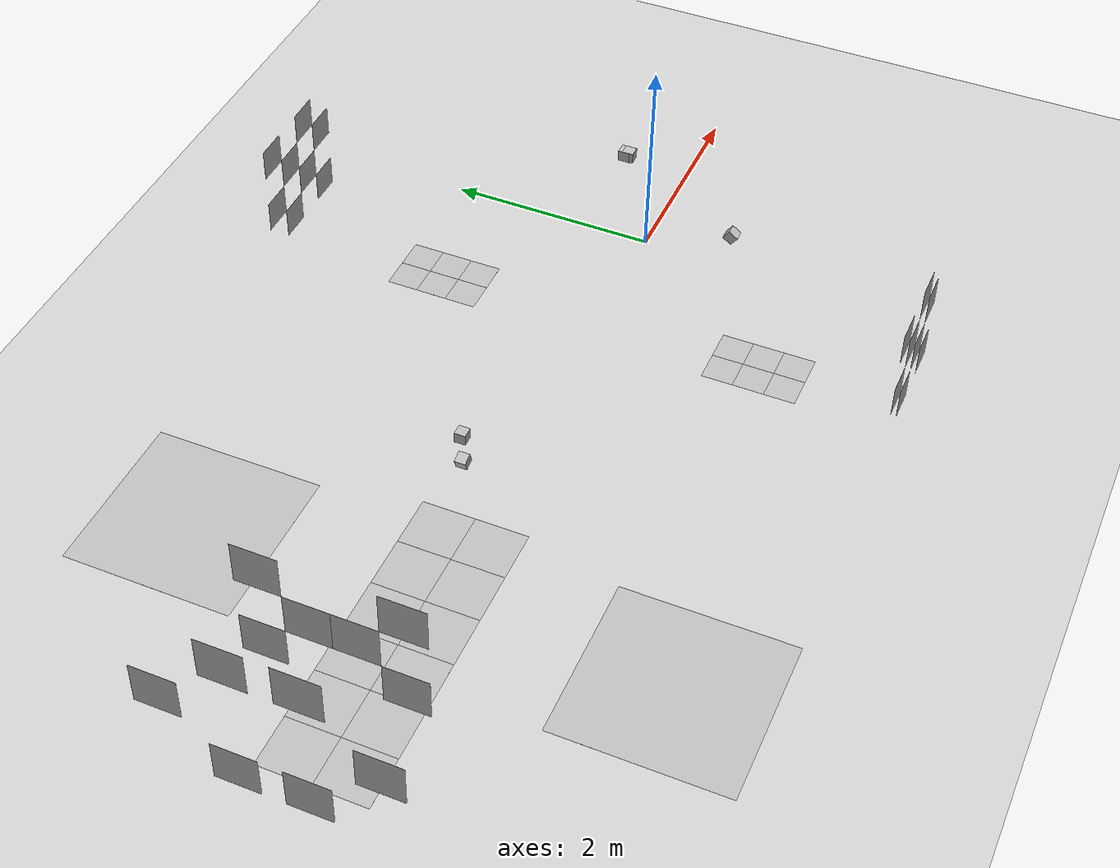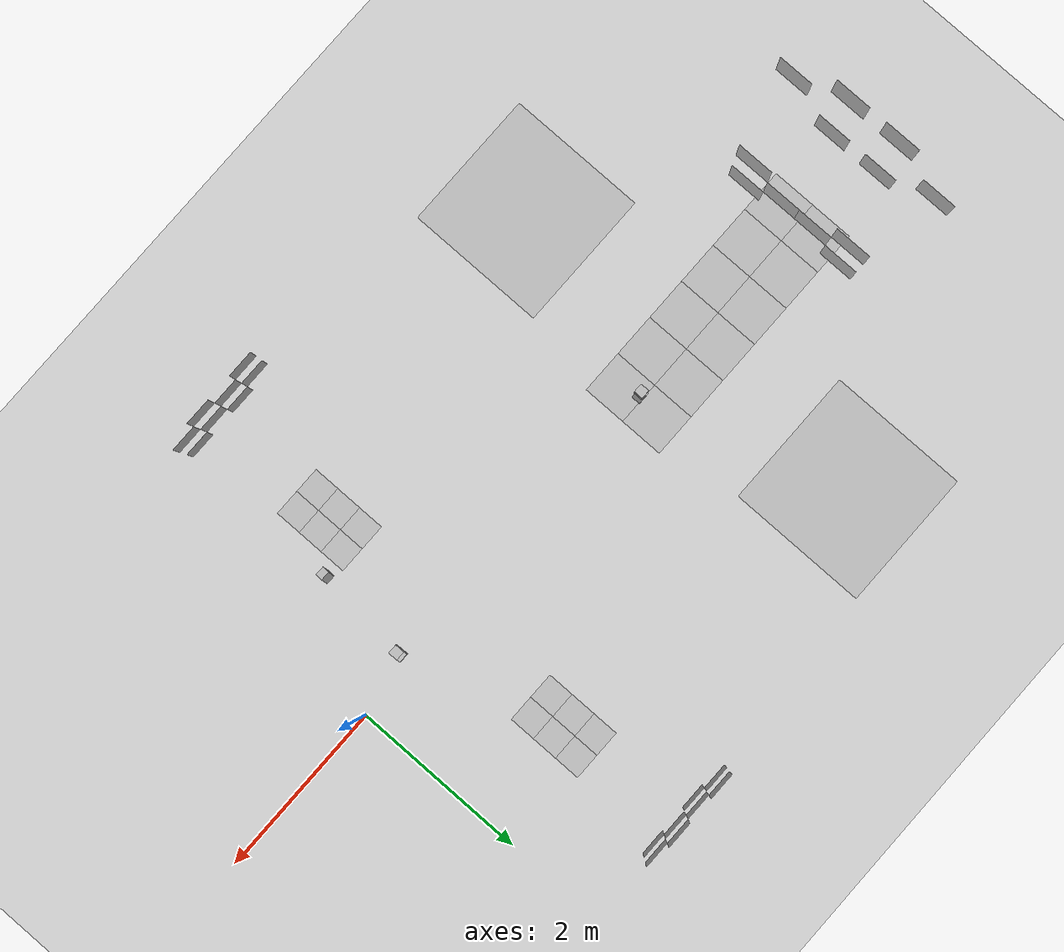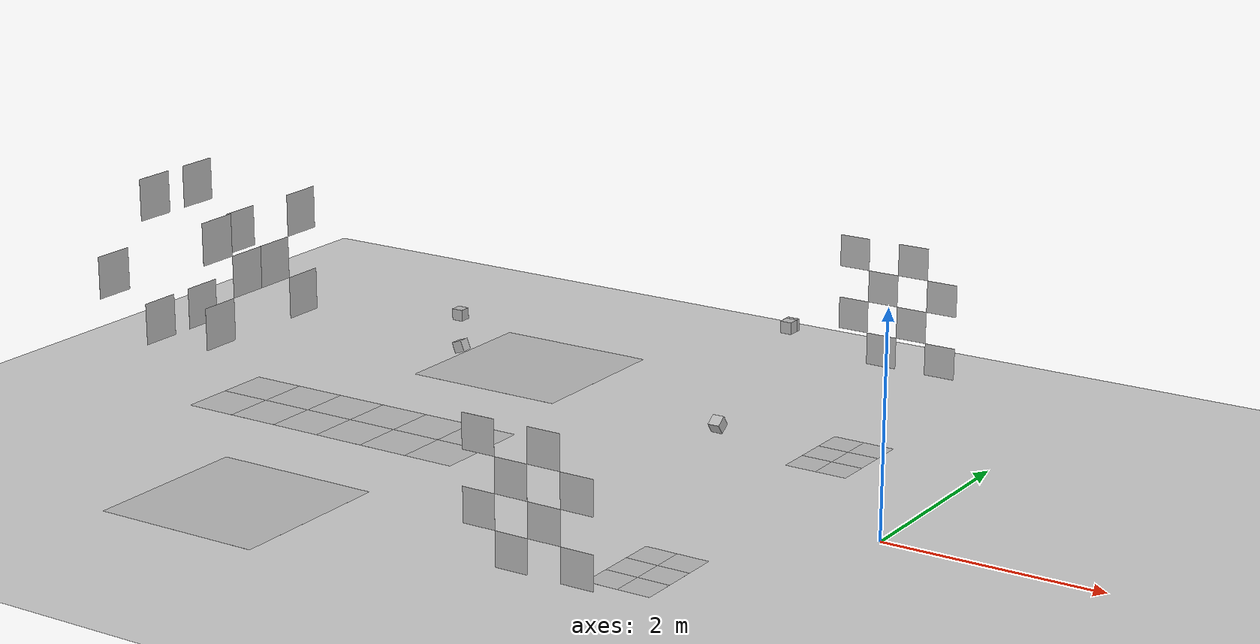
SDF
<sdf version="1.7">
 <world name="default">
  <model name="ground_plane">
   <pose>1.6 0 -0.001 0 -0 0</pose>
   <static>1</static>
   <link name="link">
    <collision name="collision">
     <geometry><plane><normal>0 0 1</normal><size>100 100</size></plane></geometry>
     <surface>
      <contact><collide_bitmask>65535</collide_bitmask></contact>
      <friction><ode><mu>100</mu><mu2>50</mu2></ode></friction>
     </surface>
    </collision>
    <visual name="visual">
     <cast_shadows>0</cast_shadows>
     <geometry><plane><normal>0 0 1</normal><size>100 100</size></plane></geometry>
     <material>
      <script><uri>file://media/materials/scripts/gazebo.material</uri><name>Gazebo/Grey</name></script>
     </material>
    </visual>
   </link>
  </model>
  <model name="Apriltag36_10_00115">
   <link name="main">
    <visual name="main_Visual">
     <geometry><box><size>0.5 0.5 0.0001</size></box></geometry>
     <material>
      <script>
       <uri>model://Apriltag36_10_00115/materials/scripts</uri>
       <uri>model://Apriltag36_10_00115/materials/textures</uri>
       <name>Apriltag36_10_00115</name>
      </script>
     </material>
    </visual>
    <collision name="collision"><geometry><box><size>0.5 0.5 0.0001</size></box></geometry></collision>
   </link>
   <static>1</static>
   <pose>-5.25 0.25 0 0 -0 0</pose>
  </model>
  <model name="Apriltag36_10_00114">
   <link name="main">
    <visual name="main_Visual">
     <geometry><box><size>0.5 0.5 0.0001</size></box></geometry>
     <material>
      <script>
       <uri>model://Apriltag36_10_00114/materials/scripts</uri>
       <uri>model://Apriltag36_10_00114/materials/textures</uri>
       <name>Apriltag36_10_00114</name>
      </script>
     </material>
    </visual>
    <collision name="collision"><geometry><box><size>0.5 0.5 0.0001</size></box></geometry></collision>
   </link>
   <static>1</static>
   <pose>-5.75 0.25 0 0 -0 0</pose>
  </model>
  <model name="Apriltag36_10_00113">
   <link name="main">
    <visual name="main_Visual">
     <geometry><box><size>0.5 0.5 0.0001</size></box></geometry>
     <material>
      <script>
       <uri>model://Apriltag36_10_00113/materials/scripts</uri>
       <uri>model://Apriltag36_10_00113/materials/textures</uri>
       <name>Apriltag36_10_00113</name>
      </script>
     </material>
    </visual>
    <collision name="collision"><geometry><box><size>0.5 0.5 0.0001</size></box></geometry></collision>
   </link>
   <static>1</static>
   <pose>-6.25 0.25 0 0 -0 0</pose>
  </model>
  <model name="Apriltag36_10_00112">
   <link name="main">
    <visual name="main_Visual">
     <geometry><box><size>0.5 0.5 0.0001</size></box></geometry>
     <material>
      <script>
       <uri>model://Apriltag36_10_00112/materials/scripts</uri>
       <uri>model://Apriltag36_10_00112/materials/textures</uri>
       <name>Apriltag36_10_00112</name>
      </script>
     </material>
    </visual>
    <collision name="collision"><geometry><box><size>0.5 0.5 0.0001</size></box></geometry></collision>
   </link>
   <static>1</static>
   <pose>-6.75 0.25 0 0 -0 0</pose>
  </model>
  <model name="Apriltag36_10_00119">
   <link name="main">
    <visual name="main_Visual">
     <geometry><box><size>0.5 0.5 0.0001</size></box></geometry>
     <material>
      <script>
       <uri>model://Apriltag36_10_00119/materials/scripts</uri>
       <uri>model://Apriltag36_10_00119/materials/textures</uri>
       <name>Apriltag36_10_00119</name>
      </script>
     </material>
    </visual>
    <collision name="collision"><geometry><box><size>0.5 0.5 0.0001</size></box></geometry></collision>
   </link>
   <static>1</static>
   <pose>-5.25 -0.25 0 0 -0 0</pose>
  </model>
  <model name="Apriltag36_10_00118">
   <link name="main">
    <visual name="main_Visual">
     <geometry><box><size>0.5 0.5 0.0001</size></box></geometry>
     <material>
      <script>
       <uri>model://Apriltag36_10_00118/materials/scripts</uri>
       <uri>model://Apriltag36_10_00118/materials/textures</uri>
       <name>Apriltag36_10_00118</name>
      </script>
     </material>
    </visual>
    <collision name="collision"><geometry><box><size>0.5 0.5 0.0001</size></box></geometry></collision>
   </link>
   <static>1</static>
   <pose>-5.75 -0.25 0 0 -0 0</pose>
  </model>
  <model name="Apriltag36_10_00117">
   <link name="main">
    <visual name="main_Visual">
     <geometry><box><size>0.5 0.5 0.0001</size></box></geometry>
     <material>
      <script>
       <uri>model://Apriltag36_10_00117/materials/scripts</uri>
       <uri>model://Apriltag36_10_00117/materials/textures</uri>
       <name>Apriltag36_10_00117</name>
      </script>
     </material>
    </visual>
    <collision name="collision"><geometry><box><size>0.5 0.5 0.0001</size></box></geometry></collision>
   </link>
   <static>1</static>
   <pose>-6.25 -0.25 0 0 -0 0</pose>
  </model>
  <model name="Apriltag36_10_00116">
   <link name="main">
    <visual name="main_Visual">
     <geometry><box><size>0.5 0.5 0.0001</size></box></geometry>
     <material>
      <script>
       <uri>model://Apriltag36_10_00116/materials/scripts</uri>
       <uri>model://Apriltag36_10_00116/materials/textures</uri>
       <name>Apriltag36_10_00116</name>
      </script>
     </material>
    </visual>
    <collision name="collision"><geometry><box><size>0.5 0.5 0.0001</size></box></geometry></collision>
   </link>
   <static>1</static>
   <pose>-6.75 -0.25 0 0 -0 0</pose>
  </model>
  <model name="Apriltag36_11_00423">
   <link name="main">
    <pose>0 0 0 3.14159 -1.5707 -0</pose>
    <visual name="main_Visual">
     <geometry><box><size>0.4 0.4 0.0001</size></box></geometry>
     <material>
      <script>
       <uri>model://Apriltag36_11_00423/materials/scripts</uri>
       <uri>model://Apriltag36_11_00423/materials/textures</uri>
       <name>Apriltag36_11_00423</name>
      </script>
     </material>
    </visual>
    <collision name="collision"><geometry><box><size>0.5 0.5 0.0001</size></box></geometry></collision>
   </link>
   <static>1</static>
   <pose>-6.5 0.2 1.3 0 -0 0</pose>
  </model>
  <model name="Apriltag36_11_00422">
   <link name="main">
    <pose>0 0 0 3.14159 -1.5707 -0</pose>
    <visual name="main_Visual">
     <geometry><box><size>0.4 0.4 0.0001</size></box></geometry>
     <material>
      <script>
       <uri>model://Apriltag36_11_00422/materials/scripts</uri>
       <uri>model://Apriltag36_11_00422/materials/textures</uri>
       <name>Apriltag36_11_00422</name>
      </script>
     </material>
    </visual>
    <collision name="collision"><geometry><box><size>0.5 0.5 0.0001</size></box></geometry></collision>
   </link>
   <static>1</static>
   <pose>-6.5 -0.2 1.3 0 -0 0</pose>
  </model>
  <model name="Apriltag36_11_00371">
   <link name="main">
    <pose>0 0 0 1.5707 -1.5707 0</pose>
    <visual name="main_Visual">
     <geometry><box><size>0.3 0.3 0.0001</size></box></geometry>
     <material>
      <script>
       <uri>model://Apriltag36_11_00371/materials/scripts</uri>
       <uri>model://Apriltag36_11_00371/materials/textures</uri>
       <name>Apriltag36_11_00371</name>
      </script>
     </material>
    </visual>
    <collision name="collision"><geometry><box><size>0.5 0.5 0.0001</size></box></geometry></collision>
   </link>
   <static>1</static>
   <pose>-1 3 1.15 0 -0 0</pose>
  </model>
  <model name="Apriltag36_11_00370">
   <link name="main">
    <pose>0 0 0 1.5707 -1.5707 0</pose>
    <visual name="main_Visual">
     <geometry><box><size>0.3 0.3 0.0001</size></box></geometry>
     <material>
      <script>
       <uri>model://Apriltag36_11_00370/materials/scripts</uri>
       <uri>model://Apriltag36_11_00370/materials/textures</uri>
       <name>Apriltag36_11_00370</name>
      </script>
     </material>
    </visual>
    <collision name="collision"><geometry><box><size>0.5 0.5 0.0001</size></box></geometry></collision>
   </link>
   <static>1</static>
   <pose>-1.6 3 1.15 0 -0 0</pose>
  </model>
  <model name="Apriltag36_11_00367">
   <link name="main">
    <pose>0 0 0 1.5707 -1.5707 0</pose>
    <visual name="main_Visual">
     <geometry><box><size>0.3 0.3 0.0001</size></box></geometry>
     <material>
      <script>
       <uri>model://Apriltag36_11_00367/materials/scripts</uri>
       <uri>model://Apriltag36_11_00367/materials/textures</uri>
       <name>Apriltag36_11_00367</name>
      </script>
     </material>
    </visual>
    <collision name="collision"><geometry><box><size>0.5 0.5 0.0001</size></box></geometry></collision>
   </link>
   <static>1</static>
   <pose>-1 3 0.55 0 -0 0</pose>
  </model>
  <model name="Apriltag36_11_00369">
   <link name="main">
    <pose>0 0 0 1.5707 -1.5707 0</pose>
    <visual name="main_Visual">
     <geometry><box><size>0.3 0.3 0.0001</size></box></geometry>
     <material>
      <script>
       <uri>model://Apriltag36_11_00369/materials/scripts</uri>
       <uri>model://Apriltag36_11_00369/materials/textures</uri>
       <name>Apriltag36_11_00369</name>
      </script>
     </material>
    </visual>
    <collision name="collision"><geometry><box><size>0.5 0.5 0.0001</size></box></geometry></collision>
   </link>
   <static>1</static>
   <pose>-1.3 3 0.85 0 -0 0</pose>
  </model>
  <model name="Apriltag36_11_00366">
   <link name="main">
    <pose>0 0 0 1.5707 -1.5707 0</pose>
    <visual name="main_Visual">
     <geometry><box><size>0.3 0.3 0.0001</size></box></geometry>
     <material>
      <script>
       <uri>model://Apriltag36_11_00366/materials/scripts</uri>
       <uri>model://Apriltag36_11_00366/materials/textures</uri>
       <name>Apriltag36_11_00366</name>
      </script>
     </material>
    </visual>
    <collision name="collision"><geometry><box><size>0.5 0.5 0.0001</size></box></geometry></collision>
   </link>
   <static>1</static>
   <pose>-1.6 3 0.55 0 -0 0</pose>
  </model>
  <model name="Apriltag36_11_00396">
   <link name="main">
    <pose>0 0 0 -1.5707 -1.5707 -0</pose>
    <visual name="main_Visual">
     <geometry><box><size>0.3 0.3 0.0001</size></box></geometry>
     <material>
      <script>
       <uri>model://Apriltag36_11_00396/materials/scripts</uri>
       <uri>model://Apriltag36_11_00396/materials/textures</uri>
       <name>Apriltag36_11_00396</name>
      </script>
     </material>
    </visual>
    <collision name="collision"><geometry><box><size>0.5 0.5 0.0001</size></box></geometry></collision>
   </link>
   <static>1</static>
   <pose>-1.3 -3 1.45 0 -0 0</pose>
  </model>
  <model name="Apriltag36_11_00395">
   <link name="main">
    <pose>0 0 0 -1.5707 -1.5707 -0</pose>
    <visual name="main_Visual">
     <geometry><box><size>0.3 0.3 0.0001</size></box></geometry>
     <material>
      <script>
       <uri>model://Apriltag36_11_00395/materials/scripts</uri>
       <uri>model://Apriltag36_11_00395/materials/textures</uri>
       <name>Apriltag36_11_00395</name>
      </script>
     </material>
    </visual>
    <collision name="collision"><geometry><box><size>0.5 0.5 0.0001</size></box></geometry></collision>
   </link>
   <static>1</static>
   <pose>-1.6 -3 1.15 0 -0 0</pose>
  </model>
  <model name="Apriltag36_11_00391">
   <link name="main">
    <pose>0 0 0 -1.5707 -1.5707 -0</pose>
    <visual name="main_Visual">
     <geometry><box><size>0.3 0.3 0.0001</size></box></geometry>
     <material>
      <script>
       <uri>model://Apriltag36_11_00391/materials/scripts</uri>
       <uri>model://Apriltag36_11_00391/materials/textures</uri>
       <name>Apriltag36_11_00391</name>
      </script>
     </material>
    </visual>
    <collision name="collision"><geometry><box><size>0.5 0.5 0.0001</size></box></geometry></collision>
   </link>
   <static>1</static>
   <pose>-1.6 -3 0.55 0 -0 0</pose>
  </model>
  <model name="Apriltag36_11_00397">
   <link name="main">
    <pose>0 0 0 -1.5707 -1.5707 -0</pose>
    <visual name="main_Visual">
     <geometry><box><size>0.3 0.3 0.0001</size></box></geometry>
     <material>
      <script>
       <uri>model://Apriltag36_11_00397/materials/scripts</uri>
       <uri>model://Apriltag36_11_00397/materials/textures</uri>
       <name>Apriltag36_11_00397</name>
      </script>
     </material>
    </visual>
    <collision name="collision"><geometry><box><size>0.5 0.5 0.0001</size></box></geometry></collision>
   </link>
   <static>1</static>
   <pose>-1.9 -3 1.45 0 -0 0</pose>
  </model>
  <model name="Apriltag36_11_00392">
   <link name="main">
    <pose>0 0 0 -1.5707 -1.5707 -0</pose>
    <visual name="main_Visual">
     <geometry><box><size>0.3 0.3 0.0001</size></box></geometry>
     <material>
      <script>
       <uri>model://Apriltag36_11_00392/materials/scripts</uri>
       <uri>model://Apriltag36_11_00392/materials/textures</uri>
       <name>Apriltag36_11_00392</name>
      </script>
     </material>
    </visual>
    <collision name="collision"><geometry><box><size>0.5 0.5 0.0001</size></box></geometry></collision>
   </link>
   <static>1</static>
   <pose>-1.3 -3 0.85 0 -0 0</pose>
  </model>
  <model name="Apriltag36_11_00393">
   <link name="main">
    <pose>0 0 0 -1.5707 -1.5707 -0</pose>
    <visual name="main_Visual">
     <geometry><box><size>0.3 0.3 0.0001</size></box></geometry>
     <material>
      <script>
       <uri>model://Apriltag36_11_00393/materials/scripts</uri>
       <uri>model://Apriltag36_11_00393/materials/textures</uri>
       <name>Apriltag36_11_00393</name>
      </script>
     </material>
    </visual>
    <collision name="collision"><geometry><box><size>0.5 0.5 0.0001</size></box></geometry></collision>
   </link>
   <static>1</static>
   <pose>-1.9 -3 0.85 0 -0 0</pose>
  </model>
  <model name="Apriltag36_10_00126">
   <link name="main">
    <visual name="main_Visual">
     <geometry><box><size>1.6 1.6 0.0001</size></box></geometry>
     <material>
      <script>
       <uri>model://Apriltag36_10_00126/materials/scripts</uri>
       <uri>model://Apriltag36_10_00126/materials/textures</uri>
       <name>Apriltag36_10_00126</name>
      </script>
     </material>
    </visual>
    <collision name="collision"><geometry><box><size>1.6 1.6 0.0001</size></box></geometry></collision>
   </link>
   <static>1</static>
   <pose>-5 2.2 0 0 -0 0</pose>
  </model>
  <model name="Apriltag36_10_00127">
   <link name="main">
    <visual name="main_Visual">
     <geometry><box><size>1.6 1.6 0.0001</size></box></geometry>
     <material>
      <script>
       <uri>model://Apriltag36_10_00127/materials/scripts</uri>
       <uri>model://Apriltag36_10_00127/materials/textures</uri>
       <name>Apriltag36_10_00127</name>
      </script>
     </material>
    </visual>
    <collision name="collision"><geometry><box><size>1.6 1.6 0.0001</size></box></geometry></collision>
   </link>
   <static>1</static>
   <pose>-5 -2.2 0 0 -0 0</pose>
  </model>
  <model name="Apriltag36_10_00131">
   <link name="main">
    <visual name="main_Visual">
     <geometry><box><size>0.3 0.3 0.0001</size></box></geometry>
     <material>
      <script>
       <uri>model://Apriltag36_10_00131/materials/scripts</uri>
       <uri>model://Apriltag36_10_00131/materials/textures</uri>
       <name>Apriltag36_10_00131</name>
      </script>
     </material>
    </visual>
    <collision name="collision"><geometry><box><size>0.3 0.3 0.0001</size></box></geometry></collision>
   </link>
   <static>1</static>
   <pose>-1.1 1.9 0 0 -0 0</pose>
  </model>
  <model name="Apriltag36_10_00132">
   <link name="main">
    <visual name="main_Visual">
     <geometry><box><size>0.3 0.3 0.0001</size></box></geometry>
     <material>
      <script>
       <uri>model://Apriltag36_10_00132/materials/scripts</uri>
       <uri>model://Apriltag36_10_00132/materials/textures</uri>
       <name>Apriltag36_10_00132</name>
      </script>
     </material>
    </visual>
    <collision name="collision"><geometry><box><size>0.3 0.3 0.0001</size></box></geometry></collision>
   </link>
   <static>1</static>
   <pose>-1.1 1.6 0 0 -0 0</pose>
  </model>
  <model name="Apriltag36_10_00133">
   <link name="main">
    <visual name="main_Visual">
     <geometry><box><size>0.3 0.3 0.0001</size></box></geometry>
     <material>
      <script>
       <uri>model://Apriltag36_10_00133/materials/scripts</uri>
       <uri>model://Apriltag36_10_00133/materials/textures</uri>
       <name>Apriltag36_10_00133</name>
      </script>
     </material>
    </visual>
    <collision name="collision"><geometry><box><size>0.3 0.3 0.0001</size></box></geometry></collision>
   </link>
   <static>1</static>
   <pose>-1.1 1.3 0 0 -0 0</pose>
  </model>
  <model name="Apriltag36_10_00134">
   <link name="main">
    <visual name="main_Visual">
     <geometry><box><size>0.3 0.3 0.0001</size></box></geometry>
     <material>
      <script>
       <uri>model://Apriltag36_10_00134/materials/scripts</uri>
       <uri>model://Apriltag36_10_00134/materials/textures</uri>
       <name>Apriltag36_10_00134</name>
      </script>
     </material>
    </visual>
    <collision name="collision"><geometry><box><size>0.3 0.3 0.0001</size></box></geometry></collision>
   </link>
   <static>1</static>
   <pose>-1.4 1.9 0 0 -0 0</pose>
  </model>
  <model name="Apriltag36_10_00135">
   <link name="main">
    <visual name="main_Visual">
     <geometry><box><size>0.3 0.3 0.0001</size></box></geometry>
     <material>
      <script>
       <uri>model://Apriltag36_10_00135/materials/scripts</uri>
       <uri>model://Apriltag36_10_00135/materials/textures</uri>
       <name>Apriltag36_10_00135</name>
      </script>
     </material>
    </visual>
    <collision name="collision"><geometry><box><size>0.3 0.3 0.0001</size></box></geometry></collision>
   </link>
   <static>1</static>
   <pose>-1.4 1.6 0 0 -0 0</pose>
  </model>
  <model name="Apriltag36_10_00136">
   <link name="main">
    <visual name="main_Visual">
     <geometry><box><size>0.3 0.3 0.0001</size></box></geometry>
     <material>
      <script>
       <uri>model://Apriltag36_10_00136/materials/scripts</uri>
       <uri>model://Apriltag36_10_00136/materials/textures</uri>
       <name>Apriltag36_10_00136</name>
      </script>
     </material>
    </visual>
    <collision name="collision"><geometry><box><size>0.3 0.3 0.0001</size></box></geometry></collision>
   </link>
   <static>1</static>
   <pose>-1.4 1.3 0 0 -0 0</pose>
  </model>
  <model name="Apriltag36_10_00142">
   <link name="main">
    <visual name="main_Visual">
     <geometry><box><size>0.3 0.3 0.0001</size></box></geometry>
     <material>
      <script>
       <uri>model://Apriltag36_10_00142/materials/scripts</uri>
       <uri>model://Apriltag36_10_00142/materials/textures</uri>
       <name>Apriltag36_10_00142</name>
      </script>
     </material>
    </visual>
    <collision name="collision"><geometry><box><size>0.3 0.3 0.0001</size></box></geometry></collision>
   </link>
   <static>1</static>
   <pose>-1.1 -1.9 0 0 -0 0</pose>
  </model>
  <model name="Apriltag36_10_00141">
   <link name="main">
    <visual name="main_Visual">
     <geometry><box><size>0.3 0.3 0.0001</size></box></geometry>
     <material>
      <script>
       <uri>model://Apriltag36_10_00141/materials/scripts</uri>
       <uri>model://Apriltag36_10_00141/materials/textures</uri>
       <name>Apriltag36_10_00141</name>
      </script>
     </material>
    </visual>
    <collision name="collision"><geometry><box><size>0.3 0.3 0.0001</size></box></geometry></collision>
   </link>
   <static>1</static>
   <pose>-1.1 -1.6 0 0 -0 0</pose>
  </model>
  <model name="Apriltag36_10_00140">
   <link name="main">
    <visual name="main_Visual">
     <geometry><box><size>0.3 0.3 0.0001</size></box></geometry>
     <material>
      <script>
       <uri>model://Apriltag36_10_00140/materials/scripts</uri>
       <uri>model://Apriltag36_10_00140/materials/textures</uri>
       <name>Apriltag36_10_00140</name>
      </script>
     </material>
    </visual>
    <collision name="collision"><geometry><box><size>0.3 0.3 0.0001</size></box></geometry></collision>
   </link>
   <static>1</static>
   <pose>-1.1 -1.3 0 0 -0 0</pose>
  </model>
  <model name="Apriltag36_10_00145">
   <link name="main">
    <visual name="main_Visual">
     <geometry><box><size>0.3 0.3 0.0001</size></box></geometry>
     <material>
      <script>
       <uri>model://Apriltag36_10_00145/materials/scripts</uri>
       <uri>model://Apriltag36_10_00145/materials/textures</uri>
       <name>Apriltag36_10_00145</name>
      </script>
     </material>
    </visual>
    <collision name="collision"><geometry><box><size>0.3 0.3 0.0001</size></box></geometry></collision>
   </link>
   <static>1</static>
   <pose>-1.4 -1.9 0 0 -0 0</pose>
  </model>
  <model name="Apriltag36_10_00144">
   <link name="main">
    <visual name="main_Visual">
     <geometry><box><size>0.3 0.3 0.0001</size></box></geometry>
     <material>
      <script>
       <uri>model://Apriltag36_10_00144/materials/scripts</uri>
       <uri>model://Apriltag36_10_00144/materials/textures</uri>
       <name>Apriltag36_10_00144</name>
      </script>
     </material>
    </visual>
    <collision name="collision"><geometry><box><size>0.3 0.3 0.0001</size></box></geometry></collision>
   </link>
   <static>1</static>
   <pose>-1.4 -1.6 0 0 -0 0</pose>
  </model>
  <model name="Apriltag36_10_00143">
   <link name="main">
    <visual name="main_Visual">
     <geometry><box><size>0.3 0.3 0.0001</size></box></geometry>
     <material>
      <script>
       <uri>model://Apriltag36_10_00143/materials/scripts</uri>
       <uri>model://Apriltag36_10_00143/materials/textures</uri>
       <name>Apriltag36_10_00143</name>
      </script>
     </material>
    </visual>
    <collision name="collision"><geometry><box><size>0.3 0.3 0.0001</size></box></geometry></collision>
   </link>
   <static>1</static>
   <pose>-1.4 -1.3 0 0 -0 0</pose>
  </model>
  <model name="front_wide">
   <pose>-0.85793 -0.08982 1.72389 0 -0 0</pose>
   <link name="link">
    <inertial>
     <mass>0.1</mass>
     <inertia>
      <ixx>0.000166667</ixx>
      <iyy>0.000166667</iyy>
      <izz>0.000166667</izz>
      <ixy>0</ixy>
      <ixz>0</ixz>
      <iyz>0</iyz>
     </inertia>
    </inertial>
    <collision name="collision"><geometry><box><size>0.1 0.1 0.1</size></box></geometry></collision>
    <visual name="visual"><geometry><box><size>0.1 0.1 0.1</size></box></geometry></visual>
    <sensor name="camera" type="camera">
     <camera>
      <horizontal_fov>2.094</horizontal_fov>
      <image><width>3840</width><height>2160</height></image>
      <clip><near>0.1</near><far>100</far></clip>
      <distortion>
       <k1>-0.350999</k1>
       <k2>0.19209</k2>
       <k3>-0.0770118</k3>
       <p1>0</p1>
       <p2>0</p2>
       <center>0.49744 0.4991</center>
      </distortion>
      <noise><type>gaussian</type><mean>0</mean><stddev>0.007</stddev></noise>
     </camera>
     <plugin name="camera_controller" filename="libgazebo_ros_camera.so">
      <alwaysOn>1</alwaysOn>
      <updateRate>0.0</updateRate>
      <cameraName>rrbot/camera1</cameraName>
      <imageTopicName>image_raw</imageTopicName>
      <cameraInfoTopicName>camera_info</cameraInfoTopicName>
      <frameName>camera_link</frameName>
      <hackBaseline>0.0</hackBaseline>
      <distortionK1>-0.35099863115140095</distortionK1>
      <distortionK2>0.19209039110108211</distortionK2>
      <distortionK3>-0.07701177238709249</distortionK3>
      <distortionT1>0.0</distortionT1>
      <distortionT2>0.0</distortionT2>
     </plugin>
     <always_on>1</always_on>
     <update_rate>30</update_rate>
     <visualize>1</visualize>
    </sensor>
   </link>
   <static>1</static>
  </model>
  <model name="front_tele">
   <pose>-0.85988 -0.05442 1.72388 0 -0 0</pose>
   <link name="link">
    <inertial>
     <mass>0.1</mass>
     <inertia>
      <ixx>0.000166667</ixx>
      <iyy>0.000166667</iyy>
      <izz>0.000166667</izz>
      <ixy>0</ixy>
      <ixz>0</ixz>
      <iyz>0</iyz>
     </inertia>
    </inertial>
    <collision name="collision"><geometry><box><size>0.1 0.1 0.1</size></box></geometry></collision>
    <visual name="visual"><geometry><box><size>0.1 0.1 0.1</size></box></geometry></visual>
    <sensor name="camera" type="camera">
     <camera>
      <horizontal_fov>0.5235</horizontal_fov>
      <image><width>3840</width><height>2160</height></image>
      <clip><near>0.1</near><far>200</far></clip>
      <distortion><k1>0</k1><k2>0</k2><k3>0</k3><p1>0</p1><p2>0</p2><center>0.49986 0.484568</center></distortion>
      <noise><type>gaussian</type><mean>0</mean><stddev>0.007</stddev></noise>
     </camera>
     <plugin name="camera_controller" filename="libgazebo_ros_camera.so">
      <alwaysOn>1</alwaysOn>
      <updateRate>0.0</updateRate>
      <cameraName>rrbot/front_tele</cameraName>
      <imageTopicName>image_raw</imageTopicName>
      <cameraInfoTopicName>camera_info</cameraInfoTopicName>
      <frameName>camera_link</frameName>
      <hackBaseline>0.0</hackBaseline>
      <focalLength>7319.646289474126</focalLength>
      <distortionK1>0.0</distortionK1>
      <distortionK2>0.0</distortionK2>
      <distortionK3>0.0</distortionK3>
      <distortionT1>0.0</distortionT1>
      <distortionT2>0.0</distortionT2>
     </plugin>
     <always_on>1</always_on>
     <update_rate>30</update_rate>
     <visualize>1</visualize>
    </sensor>
   </link>
   <static>1</static>
  </model>
  <model name="jetour_nrcs_right">
   <pose>-0.904 -1.124 1.17333 1e-06 0.6108 -1.5707</pose>
   <link name="link">
    <inertial><mass>0.1</mass></inertial>
    <collision name="collision"><geometry><box><size>0.1 0.1 0.1</size></box></geometry></collision>
    <visual name="visual"><geometry><box><size>0.1 0.1 0.1</size></box></geometry></visual>
    <sensor name="camera" type="wideanglecamera">
     <camera>
      <horizontal_fov>3.40339</horizontal_fov>
      <image><width>1920</width><height>1536</height></image>
      <clip><near>0.1</near><far>100</far></clip>
      <lens>
       <type>stereographic</type>
       <scale_to_hfov>1</scale_to_hfov>
       <cutoff_angle>1.7</cutoff_angle>
       <env_texture_size>512</env_texture_size>
      </lens>
     </camera>
     <always_on>1</always_on>
     <update_rate>30</update_rate>
     <plugin name="camera_controller" filename="libgazebo_ros_camera.so">
      <alwaysOn>1</alwaysOn>
      <updateRate>0.0</updateRate>
      <cameraName>jetour_nrcs_right</cameraName>
      <imageTopicName>jetour_nrcs_right_image_raw</imageTopicName>
      <cameraInfoTopicName>jetour_nrcs_right_camera_info</cameraInfoTopicName>
      <frameName>jetour_nrcs_right_link</frameName>
      <hackBaseline>0.07</hackBaseline>
      <distortionK1>0.0</distortionK1>
      <distortionK2>0.0</distortionK2>
      <distortionK3>0.0</distortionK3>
      <distortionT1>0.0</distortionT1>
      <distortionT2>0.0</distortionT2>
     </plugin>
    </sensor>
   </link>
   <static>1</static>
  </model>
  <model name="jetour_nrcs_rear">
   <pose>-4.22438 0 0.939488 0 0.35303 3.14159</pose>
   <link name="link">
    <inertial><mass>0.1</mass></inertial>
    <collision name="collision"><geometry><box><size>0.1 0.1 0.1</size></box></geometry></collision>
    <visual name="visual"><geometry><box><size>0.1 0.1 0.1</size></box></geometry></visual>
    <sensor name="camera" type="wideanglecamera">
     <camera>
      <horizontal_fov>3.40339</horizontal_fov>
      <image><width>1920</width><height>1536</height></image>
      <clip><near>0.1</near><far>100</far></clip>
      <lens>
       <type>stereographic</type>
       <scale_to_hfov>1</scale_to_hfov>
       <cutoff_angle>1.7</cutoff_angle>
       <env_texture_size>512</env_texture_size>
      </lens>
     </camera>
     <always_on>1</always_on>
     <update_rate>30</update_rate>
     <plugin name="camera_controller" filename="libgazebo_ros_camera.so">
      <alwaysOn>1</alwaysOn>
      <updateRate>0.0</updateRate>
      <cameraName>jetour_nrcs_rear</cameraName>
      <imageTopicName>jetour_nrcs_rear_image_raw</imageTopicName>
      <cameraInfoTopicName>jetour_nrcs_rear_camera_info</cameraInfoTopicName>
      <frameName>jetour_nrcs_rear_link</frameName>
      <hackBaseline>0.07</hackBaseline>
      <distortionK1>0.0</distortionK1>
      <distortionK2>0.0</distortionK2>
      <distortionK3>0.0</distortionK3>
      <distortionT1>0.0</distortionT1>
      <distortionT2>0.0</distortionT2>
     </plugin>
    </sensor>
   </link>
   <static>1</static>
  </model>
  <model name="Apriltag36_10_00122">
   <link name="main">
    <visual name="main_Visual">
     <geometry><box><size>0.5 0.5 0.0001</size></box></geometry>
     <material>
      <script>
       <uri>model://Apriltag36_10_00122/materials/scripts</uri>
       <uri>model://Apriltag36_10_00122/materials/textures</uri>
       <name>Apriltag36_10_00122</name>
      </script>
     </material>
    </visual>
    <collision name="collision"><geometry><box><size>0.5 0.5 0.0001</size></box></geometry></collision>
   </link>
   <static>1</static>
   <pose>-4.75 -0.25 0 0 -0 0</pose>
  </model>
  <model name="Apriltag36_10_00123">
   <link name="main">
    <visual name="main_Visual">
     <geometry><box><size>0.5 0.5 0.0001</size></box></geometry>
     <material>
      <script>
       <uri>model://Apriltag36_10_00123/materials/scripts</uri>
       <uri>model://Apriltag36_10_00123/materials/textures</uri>
       <name>Apriltag36_10_00123</name>
      </script>
     </material>
    </visual>
    <collision name="collision"><geometry><box><size>0.5 0.5 0.0001</size></box></geometry></collision>
   </link>
   <static>1</static>
   <pose>-4.25 -0.25 0 0 -0 0</pose>
  </model>
  <model name="Apriltag36_10_00120">
   <link name="main">
    <visual name="main_Visual">
     <geometry><box><size>0.5 0.5 0.0001</size></box></geometry>
     <material>
      <script>
       <uri>model://Apriltag36_10_00120/materials/scripts</uri>
       <uri>model://Apriltag36_10_00120/materials/textures</uri>
       <name>Apriltag36_10_00120</name>
      </script>
     </material>
    </visual>
    <collision name="collision"><geometry><box><size>0.5 0.5 0.0001</size></box></geometry></collision>
   </link>
   <static>1</static>
   <pose>-4.75 0.25 0 0 -0 0</pose>
  </model>
  <model name="Apriltag36_10_00121">
   <link name="main">
    <visual name="main_Visual">
     <geometry><box><size>0.5 0.5 0.0001</size></box></geometry>
     <material>
      <script>
       <uri>model://Apriltag36_10_00121/materials/scripts</uri>
       <uri>model://Apriltag36_10_00121/materials/textures</uri>
       <name>Apriltag36_10_00121</name>
      </script>
     </material>
    </visual>
    <collision name="collision"><geometry><box><size>0.5 0.5 0.0001</size></box></geometry></collision>
   </link>
   <static>1</static>
   <pose>-4.25 0.25 0 0 -0 0</pose>
  </model>
  <model name="Apriltag36_11_00373">
   <link name="main">
    <pose>0 0 0 1.5707 -1.5707 0</pose>
    <visual name="main_Visual">
     <geometry><box><size>0.3 0.3 0.0001</size></box></geometry>
     <material>
      <script>
       <uri>model://Apriltag36_11_00373/materials/scripts</uri>
       <uri>model://Apriltag36_11_00373/materials/textures</uri>
       <name>Apriltag36_11_00373</name>
      </script>
     </material>
    </visual>
    <collision name="collision"><geometry><box><size>0.5 0.5 0.0001</size></box></geometry></collision>
   </link>
   <static>1</static>
   <pose>-1.3 3 1.45 0 -0 0</pose>
  </model>
  <model name="Apriltag36_11_00372">
   <link name="main">
    <pose>0 0 0 1.5707 -1.5707 0</pose>
    <visual name="main_Visual">
     <geometry><box><size>0.3 0.3 0.0001</size></box></geometry>
     <material>
      <script>
       <uri>model://Apriltag36_11_00372/materials/scripts</uri>
       <uri>model://Apriltag36_11_00372/materials/textures</uri>
       <name>Apriltag36_11_00372</name>
      </script>
     </material>
    </visual>
    <collision name="collision"><geometry><box><size>0.5 0.5 0.0001</size></box></geometry></collision>
   </link>
   <static>1</static>
   <pose>-1.9 3 1.45 0 -0 0</pose>
  </model>
  <model name="Apriltag36_11_00368">
   <link name="main">
    <pose>0 0 0 1.5707 -1.5707 0</pose>
    <visual name="main_Visual">
     <geometry><box><size>0.3 0.3 0.0001</size></box></geometry>
     <material>
      <script>
       <uri>model://Apriltag36_11_00368/materials/scripts</uri>
       <uri>model://Apriltag36_11_00368/materials/textures</uri>
       <name>Apriltag36_11_00368</name>
      </script>
     </material>
    </visual>
    <collision name="collision"><geometry><box><size>0.5 0.5 0.0001</size></box></geometry></collision>
   </link>
   <static>1</static>
   <pose>-1.9 3 0.85 0 -0 0</pose>
  </model>
  <model name="Apriltag36_11_00394">
   <link name="main">
    <pose>0 0 0 -1.5707 -1.5707 -0</pose>
    <visual name="main_Visual">
     <geometry><box><size>0.3 0.3 0.0001</size></box></geometry>
     <material>
      <script>
       <uri>model://Apriltag36_11_00394/materials/scripts</uri>
       <uri>model://Apriltag36_11_00394/materials/textures</uri>
       <name>Apriltag36_11_00394</name>
      </script>
     </material>
    </visual>
    <collision name="collision"><geometry><box><size>0.5 0.5 0.0001</size></box></geometry></collision>
   </link>
   <static>1</static>
   <pose>-1 -3 1.15 0 -0 0</pose>
  </model>
  <model name="Apriltag36_11_00390">
   <link name="main">
    <pose>0 0 0 -1.5707 -1.5707 -0</pose>
    <visual name="main_Visual">
     <geometry><box><size>0.3 0.3 0.0001</size></box></geometry>
     <material>
      <script>
       <uri>model://Apriltag36_11_00390/materials/scripts</uri>
       <uri>model://Apriltag36_11_00390/materials/textures</uri>
       <name>Apriltag36_11_00390</name>
      </script>
     </material>
    </visual>
    <collision name="collision"><geometry><box><size>0.5 0.5 0.0001</size></box></geometry></collision>
   </link>
   <static>1</static>
   <pose>-1 -3 0.55 0 -0 0</pose>
  </model>
  <model name="back_around_cam">
   <pose>-4.22773 0 1.23655 0 0.001378 3.14159</pose>
   <link name="link">
    <inertial>
     <mass>0.1</mass>
     <inertia>
      <ixx>0.000166667</ixx>
      <iyy>0.000166667</iyy>
      <izz>0.000166667</izz>
      <ixy>0</ixy>
      <ixz>0</ixz>
      <iyz>0</iyz>
     </inertia>
    </inertial>
    <collision name="collision"><geometry><box><size>0.1 0.1 0.1</size></box></geometry></collision>
    <visual name="visual"><geometry><box><size>0.1 0.1 0.1</size></box></geometry></visual>
    <sensor name="camera" type="camera">
     <camera>
      <image><width>1920</width><height>1280</height></image>
      <clip><near>0.1</near><far>100</far></clip>
      <distortion>
       <k1>-0.5008</k1>
       <k2>0.2669</k2>
       <k3>-0.1188</k3>
       <p1>0.00016716</p1>
       <p2>-0.00010342</p2>
       <center>0.48462 0.524125</center>
      </distortion>
      <noise><type>gaussian</type><mean>0</mean><stddev>0.007</stddev></noise>
      <horizontal_fov>1.047</horizontal_fov>
     </camera>
     <plugin name="camera_controller" filename="libgazebo_ros_camera.so">
      <alwaysOn>1</alwaysOn>
      <updateRate>0.0</updateRate>
      <cameraName>back_around_cam</cameraName>
      <imageTopicName>back_around_cam_image_raw</imageTopicName>
      <cameraInfoTopicName>back_around_cam_camera_info</cameraInfoTopicName>
      <frameName>camera_link</frameName>
      <hackBaseline>0.0</hackBaseline>
      <Cx>930.47</Cx>
      <Cy>670.88</Cy>
      <focalLength>1967.3</focalLength>
      <distortionK1>-0.5008</distortionK1>
      <distortionK2>>0.2669</distortionK2>
      <distortionK3>-0.1188</distortionK3>
      <distortionT1>0.00016716</distortionT1>
      <distortionT2>-0.00010342</distortionT2>
     </plugin>
     <always_on>1</always_on>
     <update_rate>30</update_rate>
     <visualize>1</visualize>
    </sensor>
   </link>
   <static>1</static>
  </model>
  <model name="Apriltag36_11_00420">
   <link name="main">
    <pose>0 0 0 3.14159 -1.5707 -0</pose>
    <visual name="main_Visual">
     <geometry><box><size>0.4 0.4 0.0001</size></box></geometry>
     <material>
      <script>
       <uri>model://Apriltag36_11_00420/materials/scripts</uri>
       <uri>model://Apriltag36_11_00420/materials/textures</uri>
       <name>Apriltag36_11_00420</name>
      </script>
     </material>
    </visual>
    <collision name="collision"><geometry><box><size>0.5 0.5 0.0001</size></box></geometry></collision>
   </link>
   <static>1</static>
   <pose>-6.5 -0.6 1.7 0 -0 0</pose>
  </model>
  <model name="Apriltag36_11_00424">
   <link name="main">
    <pose>0 0 0 3.14159 -1.5707 -0</pose>
    <visual name="main_Visual">
     <geometry><box><size>0.4 0.4 0.0001</size></box></geometry>
     <material>
      <script>
       <uri>model://Apriltag36_11_00424/materials/scripts</uri>
       <uri>model://Apriltag36_11_00424/materials/textures</uri>
       <name>Apriltag36_11_00424</name>
      </script>
     </material>
    </visual>
    <collision name="collision"><geometry><box><size>0.5 0.5 0.0001</size></box></geometry></collision>
   </link>
   <static>1</static>
   <pose>-6.5 -0.6 0.9 0 -0 0</pose>
  </model>
  <model name="Apriltag36_11_00421">
   <link name="main">
    <pose>0 0 0 3.14159 -1.5707 -0</pose>
    <visual name="main_Visual">
     <geometry><box><size>0.4 0.4 0.0001</size></box></geometry>
     <material>
      <script>
       <uri>model://Apriltag36_11_00421/materials/scripts</uri>
       <uri>model://Apriltag36_11_00421/materials/textures</uri>
       <name>Apriltag36_11_00421</name>
      </script>
     </material>
    </visual>
    <collision name="collision"><geometry><box><size>0.5 0.5 0.0001</size></box></geometry></collision>
   </link>
   <static>1</static>
   <pose>-6.5 0.6 1.7 0 -0 0</pose>
  </model>
  <model name="Apriltag36_11_00425">
   <link name="main">
    <pose>0 0 0 3.14159 -1.5707 -0</pose>
    <visual name="main_Visual">
     <geometry><box><size>0.4 0.4 0.0001</size></box></geometry>
     <material>
      <script>
       <uri>model://Apriltag36_11_00425/materials/scripts</uri>
       <uri>model://Apriltag36_11_00425/materials/textures</uri>
       <name>Apriltag36_11_00425</name>
      </script>
     </material>
    </visual>
    <collision name="collision"><geometry><box><size>0.5 0.5 0.0001</size></box></geometry></collision>
   </link>
   <static>1</static>
   <pose>-6.5 0.6 0.9 0 -0 0</pose>
  </model>
  <model name="Apriltag36_11_00430">
   <link name="main">
    <pose>0 0 0 3.14159 -1.5707 -0</pose>
    <visual name="main_Visual">
     <geometry><box><size>0.4 0.4 0.0001</size></box></geometry>
     <material>
      <script>
       <uri>model://Apriltag36_11_00430/materials/scripts</uri>
       <uri>model://Apriltag36_11_00430/materials/textures</uri>
       <name>Apriltag36_11_00430</name>
      </script>
     </material>
    </visual>
    <collision name="collision"><geometry><box><size>0.5 0.5 0.0001</size></box></geometry></collision>
   </link>
   <static>1</static>
   <pose>-7.5 -0.3 1.9 0 -0 0</pose>
  </model>
  <model name="Apriltag36_11_00431">
   <link name="main">
    <pose>0 0 0 3.14159 -1.5707 -0</pose>
    <visual name="main_Visual">
     <geometry><box><size>0.4 0.4 0.0001</size></box></geometry>
     <material>
      <script>
       <uri>model://Apriltag36_11_00431/materials/scripts</uri>
       <uri>model://Apriltag36_11_00431/materials/textures</uri>
       <name>Apriltag36_11_00431</name>
      </script>
     </material>
    </visual>
    <collision name="collision"><geometry><box><size>0.5 0.5 0.0001</size></box></geometry></collision>
   </link>
   <static>1</static>
   <pose>-7.5 0.3 1.9 0 -0 0</pose>
  </model>
  <model name="Apriltag36_11_00434">
   <link name="main">
    <pose>0 0 0 3.14159 -1.5707 -0</pose>
    <visual name="main_Visual">
     <geometry><box><size>0.4 0.4 0.0001</size></box></geometry>
     <material>
      <script>
       <uri>model://Apriltag36_11_00434/materials/scripts</uri>
       <uri>model://Apriltag36_11_00434/materials/textures</uri>
       <name>Apriltag36_11_00434</name>
      </script>
     </material>
    </visual>
    <collision name="collision"><geometry><box><size>0.5 0.5 0.0001</size></box></geometry></collision>
   </link>
   <static>1</static>
   <pose>-7.5 -0.3 0.7 0 -0 0</pose>
  </model>
  <model name="Apriltag36_11_00435">
   <link name="main">
    <pose>0 0 0 3.14159 -1.5707 -0</pose>
    <visual name="main_Visual">
     <geometry><box><size>0.4 0.4 0.0001</size></box></geometry>
     <material>
      <script>
       <uri>model://Apriltag36_11_00435/materials/scripts</uri>
       <uri>model://Apriltag36_11_00435/materials/textures</uri>
       <name>Apriltag36_11_00435</name>
      </script>
     </material>
    </visual>
    <collision name="collision"><geometry><box><size>0.5 0.5 0.0001</size></box></geometry></collision>
   </link>
   <static>1</static>
   <pose>-7.5 0.3 0.7 0 -0 0</pose>
  </model>
  <model name="Apriltag36_11_00432">
   <link name="main">
    <pose>0 0 0 3.14159 -1.5707 -0</pose>
    <visual name="main_Visual">
     <geometry><box><size>0.4 0.4 0.0001</size></box></geometry>
     <material>
      <script>
       <uri>model://Apriltag36_11_00432/materials/scripts</uri>
       <uri>model://Apriltag36_11_00432/materials/textures</uri>
       <name>Apriltag36_11_00432</name>
      </script>
     </material>
    </visual>
    <collision name="collision"><geometry><box><size>0.5 0.5 0.0001</size></box></geometry></collision>
   </link>
   <static>1</static>
   <pose>-7.5 -0.9 1.3 0 -0 0</pose>
  </model>
  <model name="Apriltag36_11_00433">
   <link name="main">
    <pose>0 0 0 3.14159 -1.5707 -0</pose>
    <visual name="main_Visual">
     <geometry><box><size>0.4 0.4 0.0001</size></box></geometry>
     <material>
      <script>
       <uri>model://Apriltag36_11_00433/materials/scripts</uri>
       <uri>model://Apriltag36_11_00433/materials/textures</uri>
       <name>Apriltag36_11_00433</name>
      </script>
     </material>
    </visual>
    <collision name="collision"><geometry><box><size>0.5 0.5 0.0001</size></box></geometry></collision>
   </link>
   <static>1</static>
   <pose>-7.5 0.9 1.3 0 -0 0</pose>
  </model>
 </world>
</sdf>
